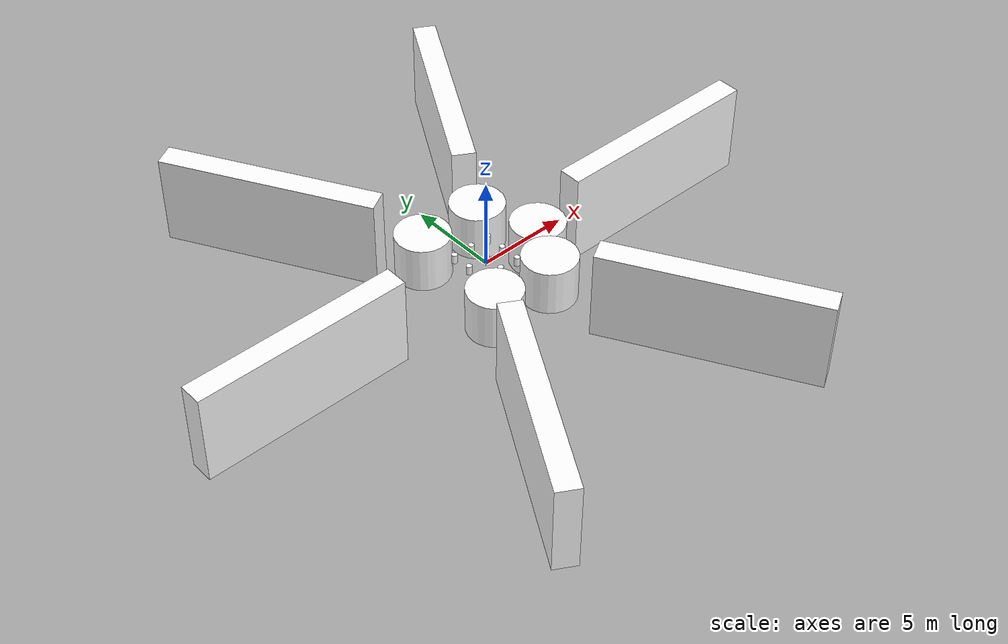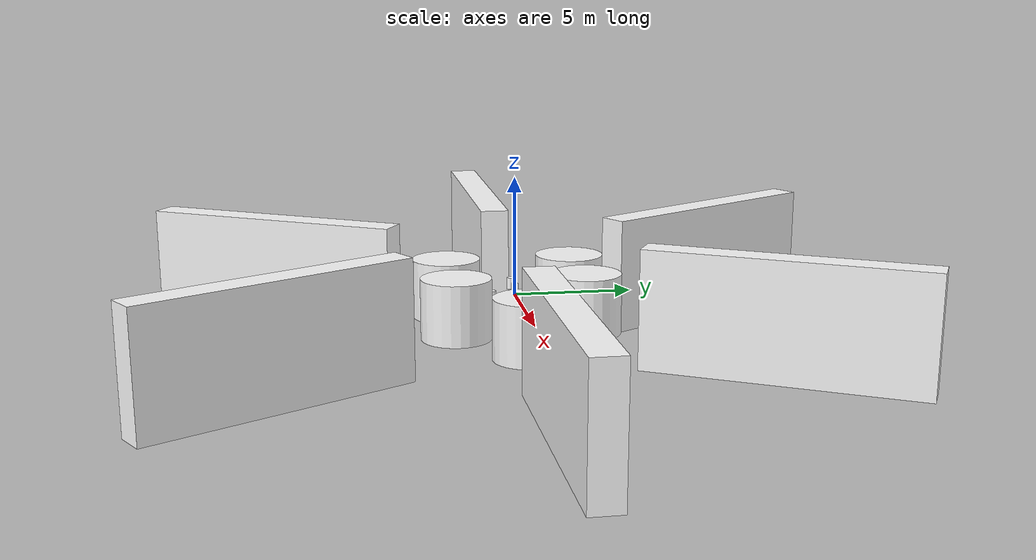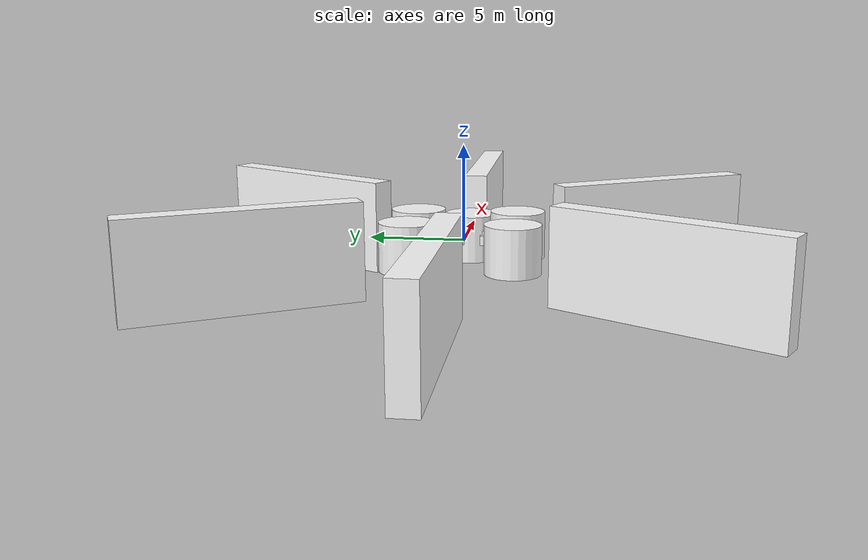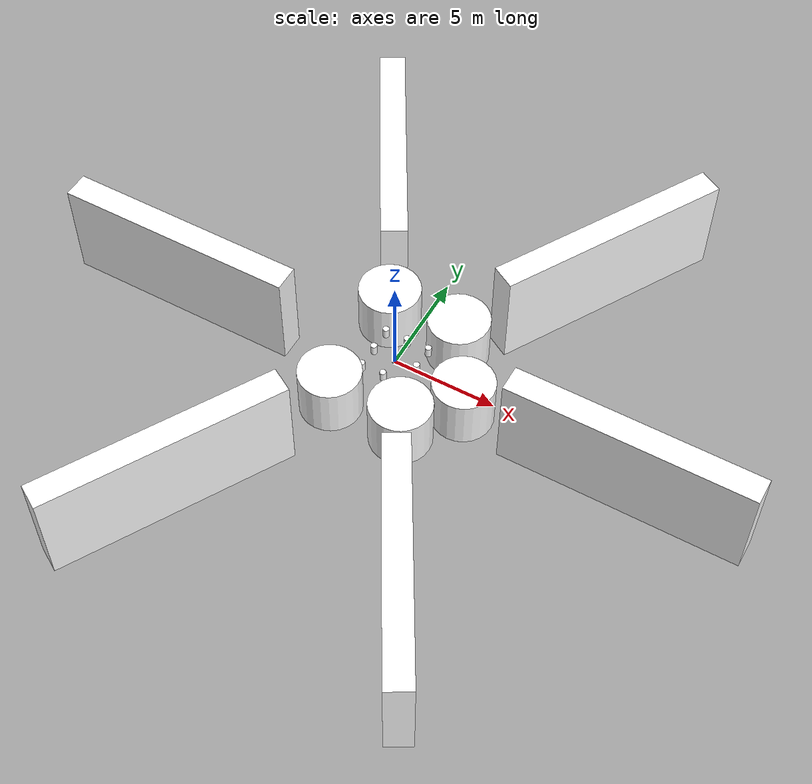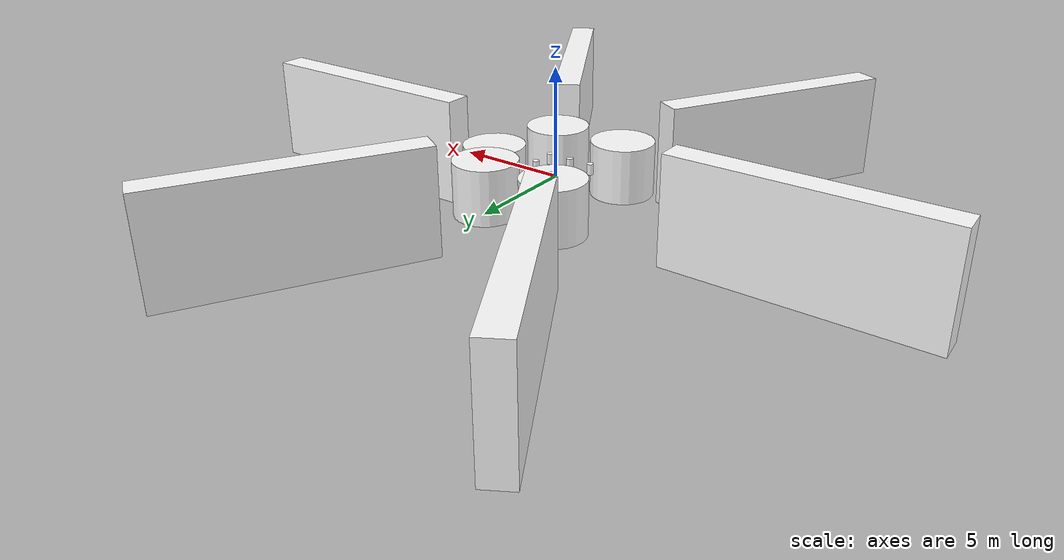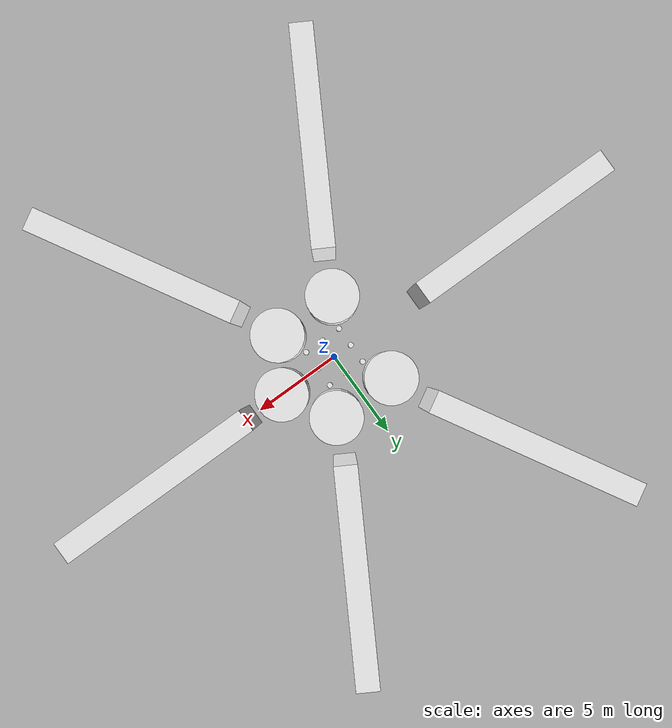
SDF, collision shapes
<?xml version="1.0" ?>
<sdf version="1.7">
  <!-- Declaración del modelo -->
  <model name="ros_symbol">

    <!-- Indica que el modelo es estático (no será afectado por la gravedad ni dinámicas físicas) -->
    <static>true</static>

    <!-- Un modelo debe contener al menos un link -->
    <link name="symbol">

      <!-- Definición de colisiones (cylinders) para representar los diferentes "pilares" del símbolo ROS -->
      <!-- Cada collision representa la física (interacciones) de una parte -->

      <!-- Ejemplo de cilindro en posición (-1.1, -1.1) -->
      <collision name="one_one">
        <pose>-1.1 -1.1 0.25 0 0 0</pose>
        <geometry>
          <cylinder>
            <radius>0.15</radius>
            <length>0.5</length>
          </cylinder>
        </geometry>
        <surface>
          <contact/>
          <bounce/>
          <friction>
            <ode/>
          </friction>
        </surface>
        <max_contacts>10</max_contacts>
      </collision>

      <!-- Representación visual (cómo se ve en la simulación) del mismo cilindro -->
      <visual name="one_one">
        <pose>-1.1 -1.1 0.25 0 0 0</pose>
        <geometry>
          <cylinder>
            <radius>0.15</radius>
            <length>0.5</length>
          </cylinder>
        </geometry>
        <material>
          <ambient>1 1 1 1</ambient>
          <diffuse>1 1 1 1</diffuse>
          <specular>0.2 0.2 0.2 1</specular>
          <emissive>0 0 0 1</emissive>
        </material>
      </visual>

      <!-- Aquí continúan más elementos iguales para "one_two", "one_three", "two_one", etc... -->
      <!-- Todos siguen la misma estructura: un collision + un visual por cada pieza -->
      <collision name='one_two'>
          <pose>-1.1 0 0.25 0 0 0</pose>
          <geometry>
            <cylinder>
              <radius>0.15</radius>
              <length>0.5</length>
            </cylinder>
          </geometry>
          <max_contacts>10</max_contacts>
          <surface>
            <bounce/>
            <friction>
              <ode/>
            </friction>
            <contact>
              <ode/>
            </contact>
          </surface>
        </collision>

        <visual name='one_two'>
          <pose>-1.1 0 0.25 0 0 0</pose>
          <geometry>
            <cylinder>
              <radius>0.15</radius>
              <length>0.5</length>
            </cylinder>
          </geometry>
          <material>
            <ambient>1 1 1 1</ambient>
            <diffuse>1 1 1 1</diffuse>
            <specular>0.2 0.2 0.2 1</specular>
            <emissive>0 0 0 1</emissive>
          </material>
        </visual>

        <collision name='one_three'>
          <pose>-1.1 1.1 0.25 0 0 0</pose>
          <geometry>
            <cylinder>
              <radius>0.15</radius>
              <length>0.5</length>
            </cylinder>
          </geometry>
          <max_contacts>10</max_contacts>
          <surface>
            <bounce/>
            <friction>
              <ode/>
            </friction>
            <contact>
              <ode/>
            </contact>
          </surface>
        </collision>

        <visual name='one_three'>
          <pose>-1.1 1.1 0.25 0 0 0</pose>
          <geometry>
            <cylinder>
              <radius>0.15</radius>
              <length>0.5</length>
            </cylinder>
          </geometry>
          <material>
            <ambient>1 1 1 1</ambient>
            <diffuse>1 1 1 1</diffuse>
            <specular>0.2 0.2 0.2 1</specular>
            <emissive>0 0 0 1</emissive>
          </material>
        </visual>

        <collision name='two_one'>
          <pose>0 -1.1 0.25 0 0 0</pose>
          <geometry>
            <cylinder>
              <radius>0.15</radius>
              <length>0.5</length>
            </cylinder>
          </geometry>
          <max_contacts>10</max_contacts>
          <surface>
            <bounce/>
            <friction>
              <ode/>
            </friction>
            <contact>
              <ode/>
            </contact>
          </surface>
        </collision>

        <visual name='two_one'>
          <pose>0 -1.1 0.25 0 0 0</pose>
          <geometry>
            <cylinder>
              <radius>0.15</radius>
              <length>0.5</length>
            </cylinder>
          </geometry>
          <material>
            <ambient>1 1 1 1</ambient>
            <diffuse>1 1 1 1</diffuse>
            <specular>0.2 0.2 0.2 1</specular>
            <emissive>0 0 0 1</emissive>
          </material>
        </visual>

        <collision name='two_two'>
          <pose>0 0 0.25 0 0 0</pose>
          <geometry>
            <cylinder>
              <radius>0.15</radius>
              <length>0.5</length>
            </cylinder>
          </geometry>
          <max_contacts>10</max_contacts>
          <surface>
            <bounce/>
            <friction>
              <ode/>
            </friction>
            <contact>
              <ode/>
            </contact>
          </surface>
        </collision>

        <visual name='two_two'>
          <pose>0 0 0.25 0 0 0</pose>
          <geometry>
            <cylinder>
              <radius>0.15</radius>
              <length>0.5</length>
            </cylinder>
          </geometry>
          <material>
            <ambient>1 1 1 1</ambient>
            <diffuse>1 1 1 1</diffuse>
            <specular>0.2 0.2 0.2 1</specular>
            <emissive>0 0 0 1</emissive>
          </material>
        </visual>

        <collision name='two_three'>
          <pose>0 1.1 0.25 0 0 0</pose>
          <geometry>
            <cylinder>
              <radius>0.15</radius>
              <length>0.5</length>
            </cylinder>
          </geometry>
          <max_contacts>10</max_contacts>
          <surface>
            <bounce/>
            <friction>
              <ode/>
            </friction>
            <contact>
              <ode/>
            </contact>
          </surface>
        </collision>

        <visual name='two_three'>
          <pose>0 1.1 0.25 0 0 0</pose>
          <geometry>
            <cylinder>
              <radius>0.15</radius>
              <length>0.5</length>
            </cylinder>
          </geometry>
          <material>
            <ambient>1 1 1 1</ambient>
            <diffuse>1 1 1 1</diffuse>
            <specular>0.2 0.2 0.2 1</specular>
            <emissive>0 0 0 1</emissive>
          </material>
        </visual>

        <collision name='three_one'>
          <pose>1.1 -1.1 0.25 0 0 0</pose>
          <geometry>
            <cylinder>
              <radius>0.15</radius>
              <length>0.5</length>
            </cylinder>
          </geometry>
          <max_contacts>10</max_contacts>
          <surface>
            <bounce/>
            <friction>
              <ode/>
            </friction>
            <contact>
              <ode/>
            </contact>
          </surface>
        </collision>

        <visual name='three_one'>
          <pose>1.1 -1.1 0.25 0 0 0</pose>
          <geometry>
            <cylinder>
              <radius>0.15</radius>
              <length>0.5</length>
            </cylinder>
          </geometry>
          <material>
            <ambient>1 1 1 1</ambient>
            <diffuse>1 1 1 1</diffuse>
            <specular>0.2 0.2 0.2 1</specular>
            <emissive>0 0 0 1</emissive>
          </material>
        </visual>

        <collision name='three_two'>
          <pose>1.1 0 0.25 0 0 0</pose>
          <geometry>
            <cylinder>
              <radius>0.15</radius>
              <length>0.5</length>
            </cylinder>
          </geometry>
          <max_contacts>10</max_contacts>
          <surface>
            <bounce/>
            <friction>
              <ode/>
            </friction>
            <contact>
              <ode/>
            </contact>
          </surface>
        </collision>

        <visual name='three_two'>
          <pose>1.1 0 0.25 0 0 0</pose>
          <geometry>
            <cylinder>
              <radius>0.15</radius>
              <length>0.5</length>
            </cylinder>
          </geometry>
          <material>
            <ambient>1 1 1 1</ambient>
            <diffuse>1 1 1 1</diffuse>
            <specular>0.2 0.2 0.2 1</specular>
            <emissive>0 0 0 1</emissive>
          </material>
        </visual>

        <collision name='three_three'>
          <pose>1.1 1.1 0.25 0 0 0</pose>
          <geometry>
            <cylinder>
              <radius>0.15</radius>
              <length>0.5</length>
            </cylinder>
          </geometry>
          <max_contacts>10</max_contacts>
          <surface>
            <bounce/>
            <friction>
              <ode/>
            </friction>
            <contact>
              <ode/>
            </contact>
          </surface>
        </collision>

        <visual name='three_three'>
          <pose>1.1 1.1 0.25 0 0 0</pose>
          <geometry>
            <cylinder>
              <radius>0.15</radius>
              <length>0.5</length>
            </cylinder>
          </geometry>
          <material>
            <ambient>1 1 1 1</ambient>
            <diffuse>1 1 1 1</diffuse>
            <specular>0.2 0.2 0.2 1</specular>
            <emissive>0 0 0 1</emissive>
          </material>
        </visual>

      <!-- Elementos adicionales que usan meshes en lugar de figuras primitivas -->

      <!-- Hexágono (mesh) en posición (3.5, 0) -->
      <collision name="head">
        <pose>3.5 0 -0.5 0 0 0</pose>
        <geometry>
          <cylinder>
            <radius>1.46647</radius> <!-- Basado en la medida de la arista -->
            <length>2.54</length>      <!-- Un grosor razonable para colisiones planas -->
          </cylinder>
        </geometry>
        <surface>
          <contact/>
          <bounce/>
          <friction>
            <ode/>
          </friction>
        </surface>
        <max_contacts>10</max_contacts>
      </collision>

      <visual name="head">
        <pose>3.5 0 -0.5 0 0 0</pose>
        <geometry>
          <mesh>
            <uri>model://hexagonal_world/meshes/hexagon.dae</uri>
            <scale>0.8 0.8 0.8</scale>
          </mesh>
        </geometry>
        <material>
          <ambient>0 1 0 1</ambient>
          <diffuse>0 1 0 1</diffuse>
          <specular>0.2 0.2 0.2 1</specular>
          <emissive>0 0 0 1</emissive>
        </material>
      </visual>

      <collision name='left_hand'>
        <pose>1.8 2.7 0 0 0 0</pose>
        <geometry>
          <cylinder>
            <radius>1.46647</radius> <!-- Basado en la medida de la arista -->
            <length>2.54</length>      <!-- Un grosor razonable para colisiones planas -->
          </cylinder>
        </geometry>
        <max_contacts>10</max_contacts>
        <surface>
          <bounce/>
          <friction>
            <ode/>
          </friction>
          <contact>
            <ode/>
          </contact>
        </surface>
      </collision>

      <visual name='left_hand'>
        <pose>1.8 2.7 0 0 0 0</pose>
        <geometry>
          <mesh>
            <uri>model://hexagonal_world/meshes/hexagon.dae</uri>
            <scale>0.55 0.55 0.55</scale>
          </mesh>
        </geometry>
        <material>
          <ambient>0 1 0 1</ambient>
          <diffuse>0 1 0 1</diffuse>
          <specular>0.2 0.2 0.2 1</specular>
          <emissive>0 0 0 1</emissive>
        </material>
      </visual>

      <collision name='right_hand'>
        <pose>1.8 -2.7 0 0 0 0</pose>
        <geometry>
          <cylinder>
            <radius>1.46647</radius> <!-- Basado en la medida de la arista -->
            <length>2.54</length>      <!-- Un grosor razonable para colisiones planas -->
          </cylinder>
        </geometry>
        <max_contacts>10</max_contacts>
        <surface>
          <bounce/>
          <friction>
            <ode/>
          </friction>
          <contact>
            <ode/>
          </contact>
        </surface>
      </collision>

      <visual name='right_hand'>
        <pose>1.8 -2.7 0 0 0 0</pose>
        <geometry>
          <mesh>
            <uri>model://hexagonal_world/meshes/hexagon.dae</uri>
            <scale>0.55 0.55 0.55</scale>
          </mesh>
        </geometry>
        <material>
          <ambient>0 1 0 1</ambient>
          <diffuse>0 1 0 1</diffuse>
          <specular>0.2 0.2 0.2 1</specular>
          <emissive>0 0 0 1</emissive>
        </material>
      </visual>

      <collision name='left_foot'>
        <pose>-1.8 2.7 0 0 0 0</pose>
        <geometry>
          <cylinder>
            <radius>1.46647</radius> <!-- Basado en la medida de la arista -->
            <length>2.54</length>      <!-- Un grosor razonable para colisiones planas -->
          </cylinder>
        </geometry>
        <max_contacts>10</max_contacts>
        <surface>
          <bounce/>
          <friction>
            <ode/>
          </friction>
          <contact>
            <ode/>
          </contact>
        </surface>
      </collision>

      <visual name='left_foot'>
        <pose>-1.8 2.7 0 0 0 0</pose>
        <geometry>
          <mesh>
            <uri>model://hexagonal_world/meshes/hexagon.dae</uri>
            <scale>0.55 0.55 0.55</scale>
          </mesh>
        </geometry>
        <material>
          <ambient>0 1 0 1</ambient>
          <diffuse>0 1 0 1</diffuse>
          <specular>0.2 0.2 0.2 1</specular>
          <emissive>0 0 0 1</emissive>
        </material>
      </visual>

      <collision name='right_foot'>
        <pose>-1.8 -2.7 0 0 0 0</pose>
        <geometry>
          <cylinder>
            <radius>1.46647</radius> <!-- Basado en la medida de la arista -->
            <length>2.54</length>      <!-- Un grosor razonable para colisiones planas -->
          </cylinder>
        </geometry>
        <max_contacts>10</max_contacts>
        <surface>
          <bounce/>
          <friction>
            <ode/>
          </friction>
          <contact>
            <ode/>
          </contact>
        </surface>
      </collision>

      <visual name='right_foot'>
        <pose>-1.8 -2.7 0 0 0 0</pose>
        <geometry>
          <mesh>
            <uri>model://hexagonal_world/meshes/hexagon.dae</uri>
            <scale>0.55 0.55 0.55</scale>
          </mesh>
        </geometry>
        <material>
          <ambient>0 1 0 1</ambient>
          <diffuse>0 1 0 1</diffuse>
          <specular>0.2 0.2 0.2 1</specular>
          <emissive>0 0 0 1</emissive>
        </material>
      </visual>

      <!-- Muro (mesh de wall.dae) -->

      <collision name="wall_1">
        <pose>11.4872 0 0 0 0 0</pose>
        <geometry>
          <box>
            <size>11.7318 1.27 5.08</size>
          </box>
        </geometry>
        <surface>
          <contact/>
          <bounce/>
          <friction>
            <ode/>
          </friction>
        </surface>
        <max_contacts>10</max_contacts>
      </collision>

      <collision name="wall_2">
        <pose>5.7436 9.9515 0 0 0 1.0472</pose>
        <geometry>
          <box>
            <size>11.7318 1.27 5.08</size>
          </box>
        </geometry>
        <surface>
          <contact/>
          <bounce/>
          <friction>
            <ode/>
          </friction>
        </surface>
        <max_contacts>10</max_contacts>
      </collision>

      <collision name="wall_3">
        <pose>-5.7436 9.9515 0 0 0 2.0944</pose>
        <geometry>
          <box>
            <size>11.7318 1.27 5.08</size>
          </box>
        </geometry>
        <surface>
          <contact/>
          <bounce/>
          <friction>
            <ode/>
          </friction>
        </surface>
        <max_contacts>10</max_contacts>
      </collision>

      <collision name="wall_4">
        <pose>-11.4872 0 0 0 0 3.1416</pose>
        <geometry>
          <box>
            <size>11.7318 1.27 5.08</size>
          </box>
        </geometry>
        <surface>
          <contact/>
          <bounce/>
          <friction>
            <ode/>
          </friction>
        </surface>
        <max_contacts>10</max_contacts>
      </collision>

      <collision name="wall_5">
        <pose>-5.7436 -9.9515 0 0 0 4.1888</pose>
        <geometry>
          <box>
            <size>11.7318 1.27 5.08</size>
          </box>
        </geometry>
        <surface>
          <contact/>
          <bounce/>
          <friction>
            <ode/>
          </friction>
        </surface>
        <max_contacts>10</max_contacts>
      </collision>

      <collision name="wall_6">
        <pose>5.7436 -9.9515 0 0 0 5.2360</pose>
        <geometry>
          <box>
            <size>11.7318 1.27 5.08</size>
          </box>
        </geometry>
        <surface>
          <contact/>
          <bounce/>
          <friction>
            <ode/>
          </friction>
        </surface>
        <max_contacts>10</max_contacts>
      </collision>

      <visual name="body">
        <pose>0 0 -0.3 0 0 -1.5708</pose>
        <geometry>
          <mesh>
            <uri>model://hexagonal_world/meshes/wall.dae</uri>
            <scale>0.25 0.25 0.25</scale>
          </mesh>
        </geometry>
        <material>
          <ambient>0 0 0 1</ambient>
          <diffuse>0 0 0 1</diffuse>
          <specular>0 0 0 1</specular>
          <emissive>0 0 0 1</emissive>
        </material>
      </visual>
    </link>
  </model>
</sdf>
